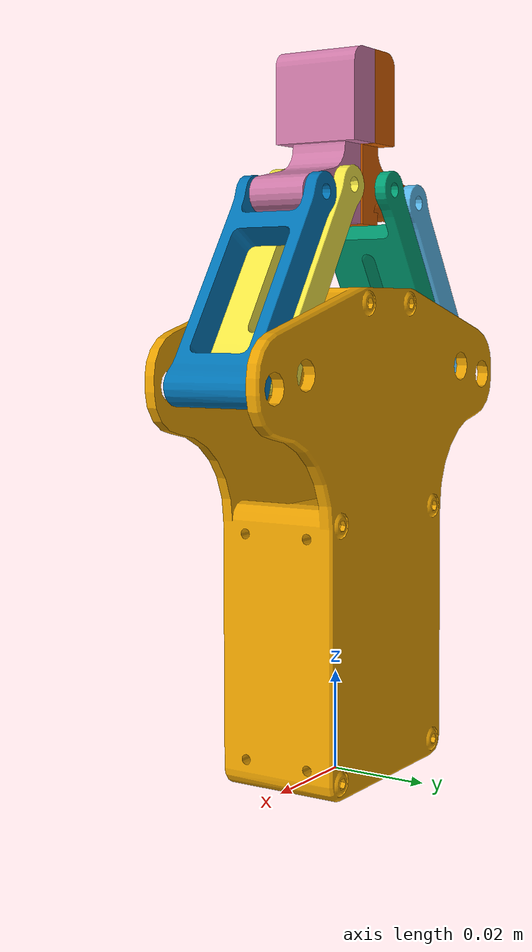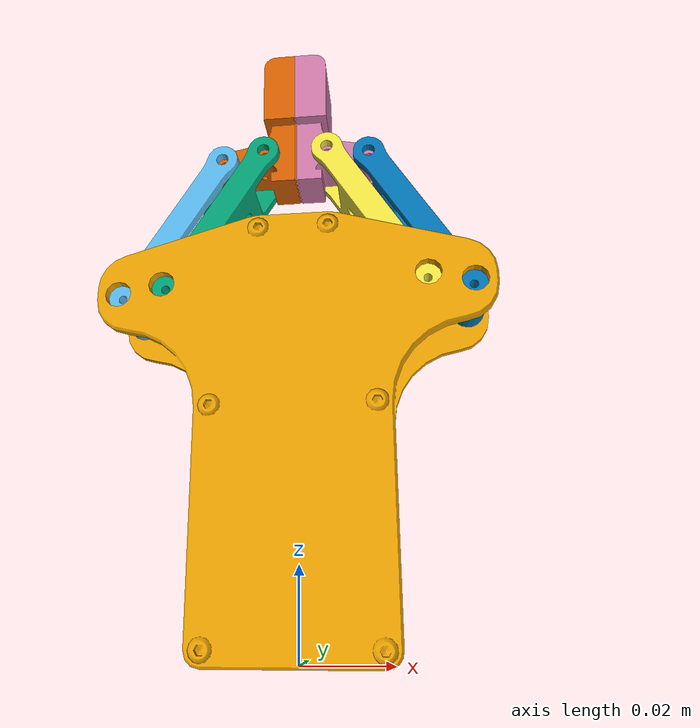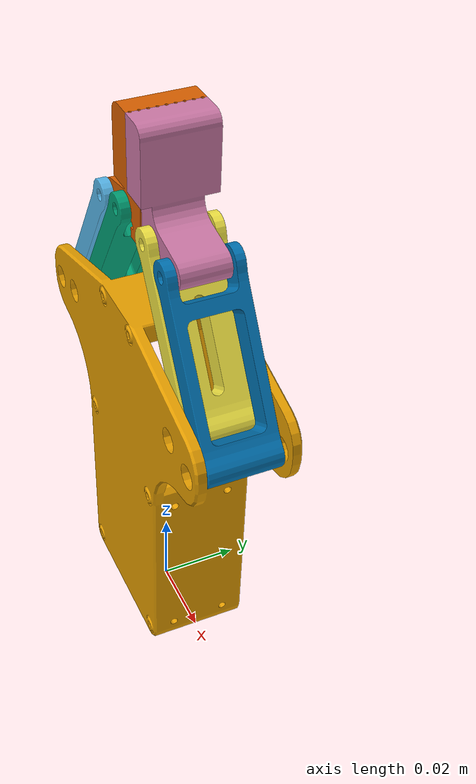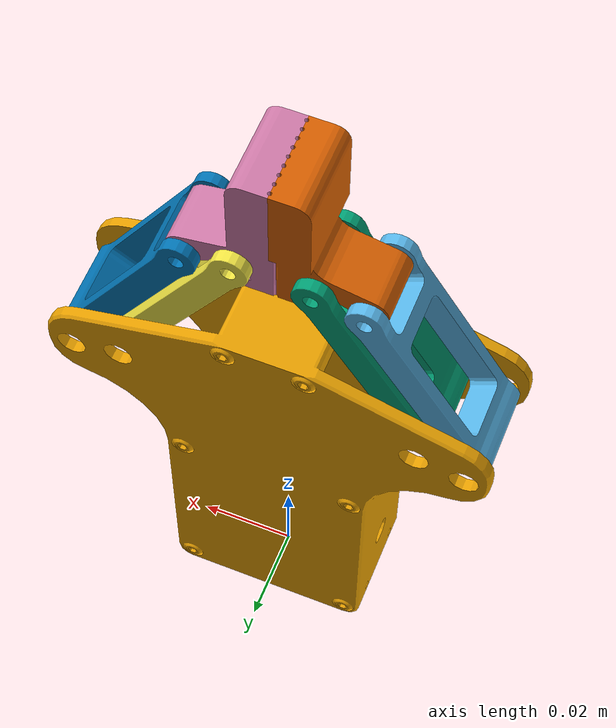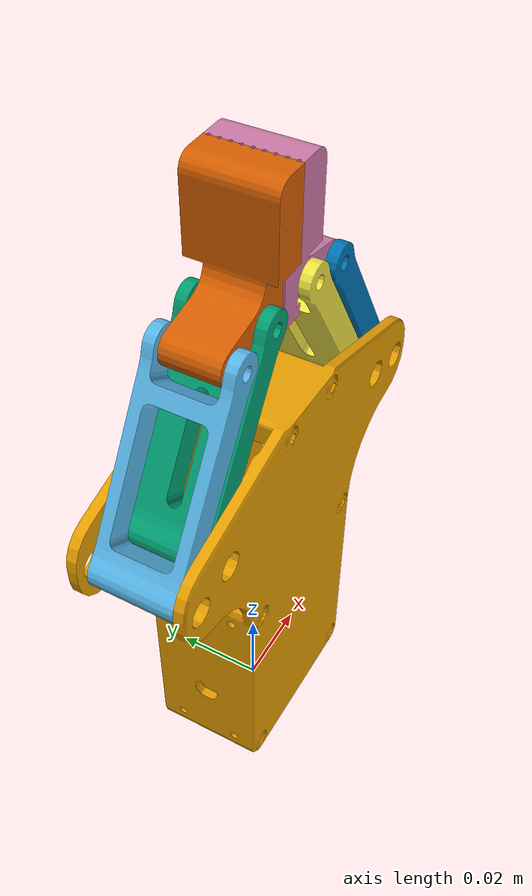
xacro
<?xml version="1.0"?>

<robot name="Inspire_$(arg type)" xmlns:xacro="http://www.ros.org/wiki/xacro">

  <xacro:arg name="type" default="EG2-4C2"/>

  <!-- 根据type参数决定使用哪种夹爪 -->
  <xacro:if value="${'$(arg type)' == 'EG2-4C2'}">
    <xacro:include filename="$(find inspire_description)/xacro/EG2-4C2.xacro"/>
    <xacro:Gripper name=""/>
  </xacro:if>
</robot>

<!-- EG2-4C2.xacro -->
<robot xmlns:xacro="http://www.ros.org/wiki/xacro">
  <xacro:macro name="Gripper" params="name">
    <xacro:property name="prefix" value="${name + '_' if name else ''}"/>
    <xacro:property name="PI" value="3.1415926535897931"/>
    <link name="${prefix}gripper_base">
      <inertial>
        <origin xyz="1.5645E-05 -4.1838E-06 0.038"/>
        <mass value="0.072633"/>
        <inertia
            ixx="5.095E-05"
            ixy="-7.3167E-13"
            ixz="2.0229E-08"
            iyy="6.0883E-05"
            iyz="-4.5583E-09"
            izz="1.933E-05"/>
      </inertial>
      <visual>
        <geometry>
          <mesh filename="file://$(find inspire_description)/meshes/EG2-4C2/baselink.obj"/>
        </geometry>
      </visual>
      <collision>
        <geometry>
          <mesh filename="file://$(find inspire_description)/meshes/EG2-4C2/baselink.obj"/>
        </geometry>
      </collision>
    </link>

    <link name="${prefix}left_outer_link">
      <inertial>
        <origin xyz="0.0087669 0.009 0.013992" />
        <mass value="0.0024292"/>
        <inertia
            ixx="5.1061E-07"
            ixy="-8.6739E-19"
            ixz="-2.508E-07"
            iyy="5.7398E-07"
            iyz="-1.3667E-18"
            izz="2.6747E-07"/>
      </inertial>
      <visual>
        <geometry>
          <mesh filename="file://$(find inspire_description)/meshes/EG2-4C2/outer_link.obj"/>
        </geometry>
      </visual>
      <collision>
        <geometry>
          <mesh filename="file://$(find inspire_description)/meshes/EG2-4C2/outer_link.obj"/>
        </geometry>
      </collision>
    </link>

    <joint name="${prefix}gripper_joint" type="revolute">
      <origin xyz="-0.04 -0.009 0.079"/>
      <parent link="${prefix}gripper_base"/>
      <child link="${prefix}left_outer_link"/>
      <axis xyz="0 -1 0"/>
      <limit lower="0" upper="0.82" effort="50" velocity="${PI}"/>
    </joint>

    <link name="${prefix}left_inner_link">
      <inertial>
        <origin xyz="0.0087435 0.009 0.013955" />
        <mass value="0.0038971"/>
        <inertia
            ixx="5.6941E-07"
            ixy="-1.0711E-18"
            ixz="-2.6891E-07"
            iyy="6.2305E-07"
            iyz="-1.6845E-18"
            izz="3.0871E-07"/>
      </inertial>
      <visual>
        <geometry>
          <mesh filename="file://$(find inspire_description)/meshes/EG2-4C2/inner_link.obj"/>
        </geometry>
      </visual>
      <collision>
        <geometry>
          <mesh filename="file://$(find inspire_description)/meshes/EG2-4C2/inner_link.obj"/>
        </geometry>
      </collision>
    </link>

    <joint name="${prefix}left_inner_joint" type="revolute">
      <origin xyz="-0.03 -0.009 0.081" />
      <parent link="${prefix}gripper_base"/>
      <child link="${prefix}left_inner_link"/>
      <axis xyz="0 -1 0"/>
      <limit lower="0" upper="0.82" effort="50" velocity="${PI}"/>
      <mimic joint="${prefix}gripper_joint"/>
    </joint>

    <link name="${prefix}right_inner_link">
      <inertial>
        <origin xyz="-0.0087435 0.009 0.013955" />
        <mass value="0.0038971"/>
        <inertia
            ixx="5.6941E-07"
            ixy="1.0666E-18"
            ixz="2.6891E-07"
            iyy="6.2305E-07"
            iyz="-1.8084E-18"
            izz="3.0871E-07"/>
      </inertial>
      <visual>
        <geometry>
          <mesh filename="file://$(find inspire_description)/meshes/EG2-4C2/inner_link.obj" scale="-1 1 1"/>
        </geometry>
      </visual>
      <collision>
        <geometry>
          <mesh filename="file://$(find inspire_description)/meshes/EG2-4C2/inner_link.obj" scale="-1 1 1"/>
        </geometry>
      </collision>
    </link>

    <joint name="${prefix}right_inner_joint" type="revolute">
      <origin xyz="0.03 -0.009 0.081" />
      <parent link="${prefix}gripper_base"/>
      <child link="${prefix}right_inner_link"/>
      <axis xyz="0 1 0"/>
      <limit lower="0" upper="0.82" effort="50" velocity="${PI}"/>
      <mimic joint="${prefix}gripper_joint" multiplier="1" offset="0"/>
    </joint>

    <link name="${prefix}right_outer_link">
      <inertial>
        <origin xyz="-0.0087669 0.009 0.013992" />
        <mass value="0.0024292"/>
        <inertia
            ixx="5.1061E-07"
            ixy="-9.5279E-19"
            ixz="2.508E-07"
            iyy="5.7398E-07"
            iyz="7.6863E-19"
            izz="2.6747E-07"/>
      </inertial>
      <visual>
        <geometry>
          <mesh filename="file://$(find inspire_description)/meshes/EG2-4C2/outer_link.obj" scale="-1 1 1"/>
        </geometry>
      </visual>
      <collision>
        <geometry>
          <mesh filename="file://$(find inspire_description)/meshes/EG2-4C2/outer_link.obj" scale="-1 1 1"/>
        </geometry>
      </collision>
    </link>

    <joint name="${prefix}right_outer_joint" type="revolute">
      <origin xyz="0.04 -0.009 0.079" />
      <parent link="${prefix}gripper_base"/>
      <child link="${prefix}right_outer_link"/>
      <axis xyz="0 1 0"/>
      <limit lower="0" upper="0.82" effort="50" velocity="${PI}"/>
      <mimic joint="${prefix}gripper_joint" multiplier="1" offset="0"/>
    </joint>

    <link name="${prefix}left_pad">
      <inertial>
        <origin xyz="0.011864 0.006 0.011367" />
        <mass value="0.0045068"/>
        <inertia
            ixx="5.1288E-07"
            ixy="-9.8137E-14"
            ixz="-9.4703E-08"
            iyy="5.3203E-07"
            iyz="-6.212E-14"
            izz="2.009E-07"/>
      </inertial>
      <visual>
        <geometry>
          <mesh filename="file://$(find inspire_description)/meshes/EG2-4C2/pad.obj"/>
        </geometry>
      </visual>
      <collision>
        <geometry>
          <mesh filename="file://$(find inspire_description)/meshes/EG2-4C2/pad.obj"/>
        </geometry>
      </collision>
    </link>

    <joint name="${prefix}left_pad_joint" type="revolute">
      <origin xyz="0.0223 0.003 0.035591" />
      <parent link="${prefix}left_outer_link"/>
      <child link="${prefix}left_pad"/>
      <axis xyz="0 1 0"/>
      <limit lower="0" upper="0.82" effort="50" velocity="${PI}"/>
      <mimic joint="${prefix}gripper_joint" multiplier="1" offset="0"/>
    </joint>

    <link name="${prefix}right_pad">
      <inertial>
        <origin xyz="-0.011864 0.006 0.011367" />
        <mass value="0.0045068"/>
        <inertia
            ixx="5.1288E-07"
            ixy="-9.8137E-14"
            ixz="9.4703E-08"
            iyy="5.3203E-07"
            iyz="6.2119E-14"
            izz="2.009E-07"/>
      </inertial>
      <visual>
        <geometry>
          <mesh filename="file://$(find inspire_description)/meshes/EG2-4C2/pad.obj" scale="-1 1 1"/>
        </geometry>
      </visual>
      <collision>
        <geometry>
          <mesh filename="file://$(find inspire_description)/meshes/EG2-4C2/pad.obj"  scale="-1 1 1"/>
        </geometry>
      </collision>
    </link>

    <joint name="${prefix}right_pad_joint" type="revolute">
      <origin xyz="-0.0223 0.003 0.035591"/>
      <parent link="${prefix}right_outer_link"/>
      <child link="${prefix}right_pad"/>
      <axis xyz="0 -1 0"/>
      <limit lower="0" upper="0.82" effort="50" velocity="${PI}"/>
      <mimic joint="${prefix}gripper_joint" multiplier="1" offset="0"/>
    </joint>

  </xacro:macro>
</robot>
